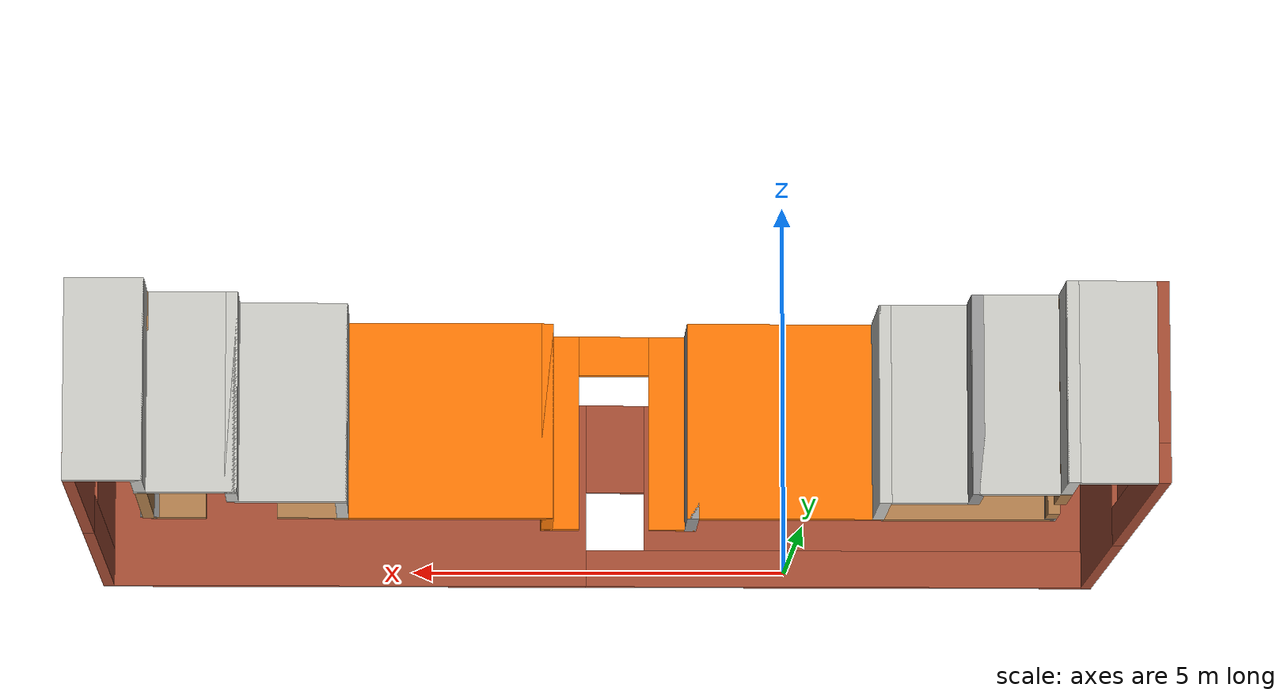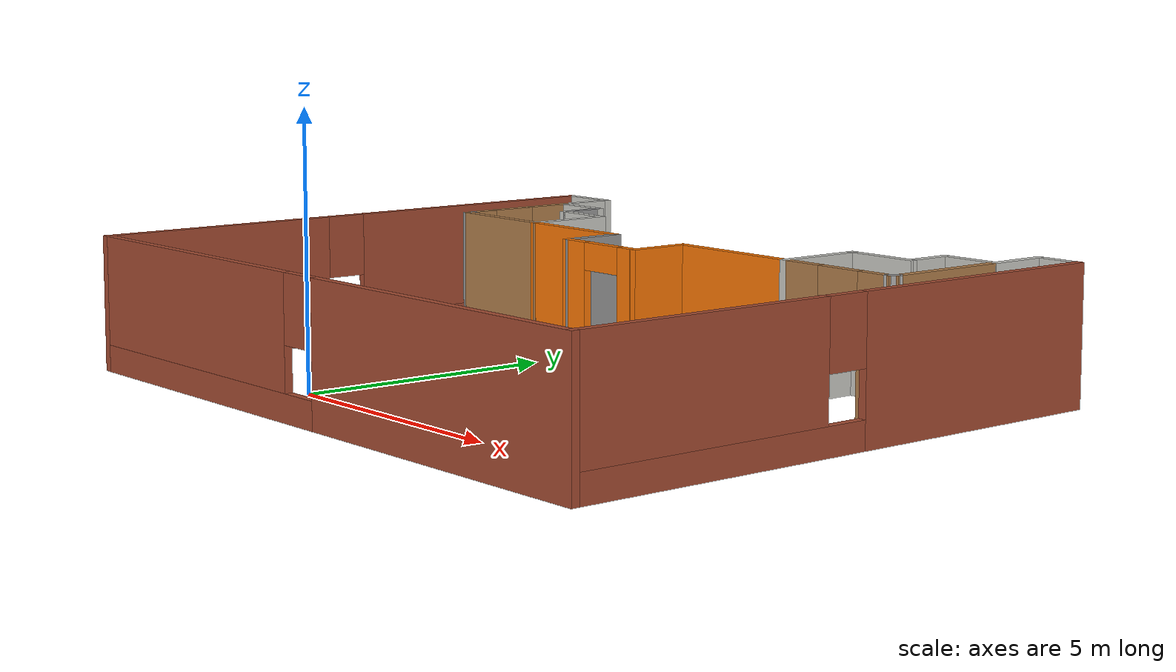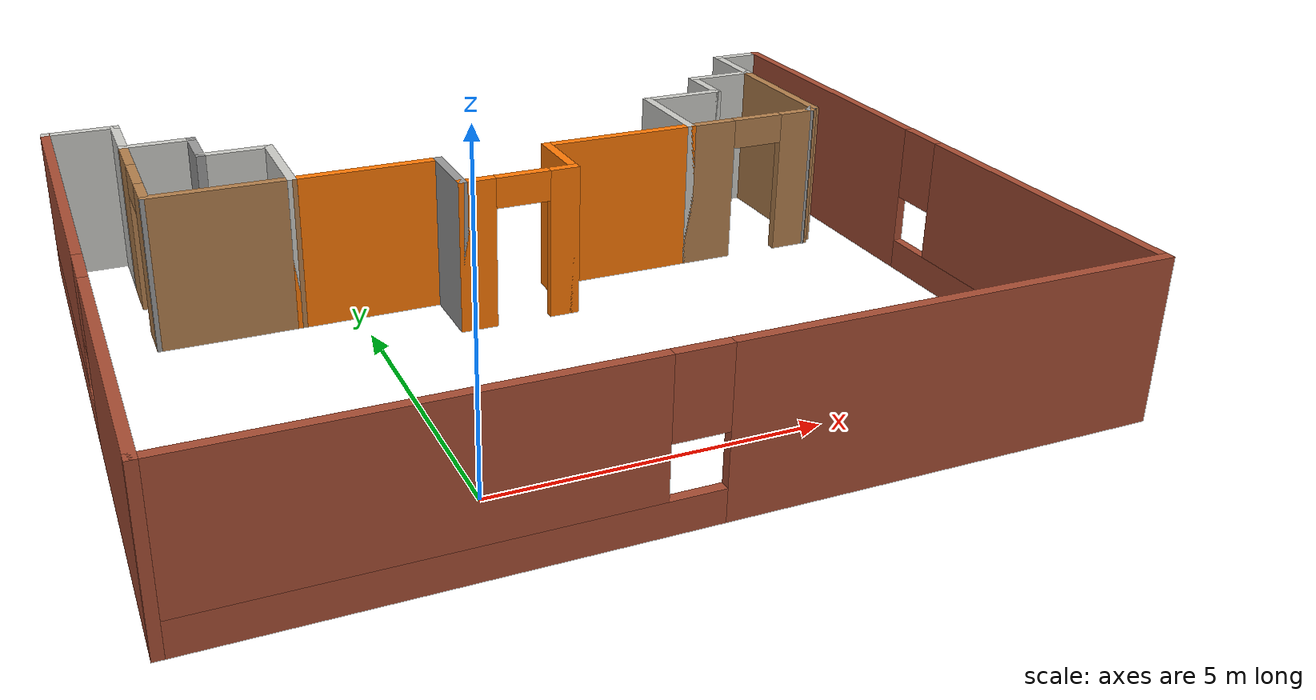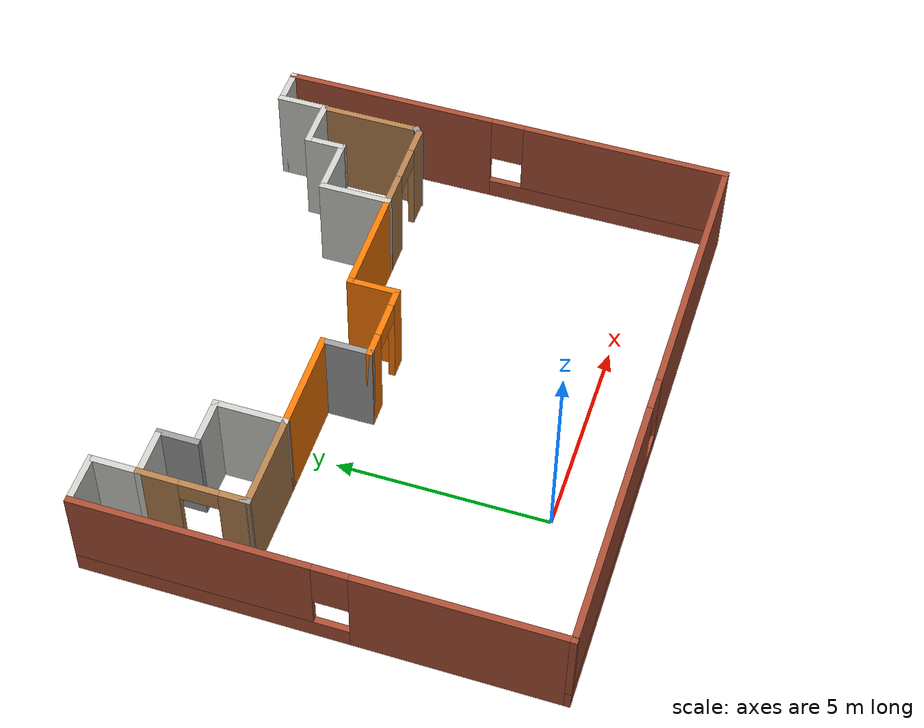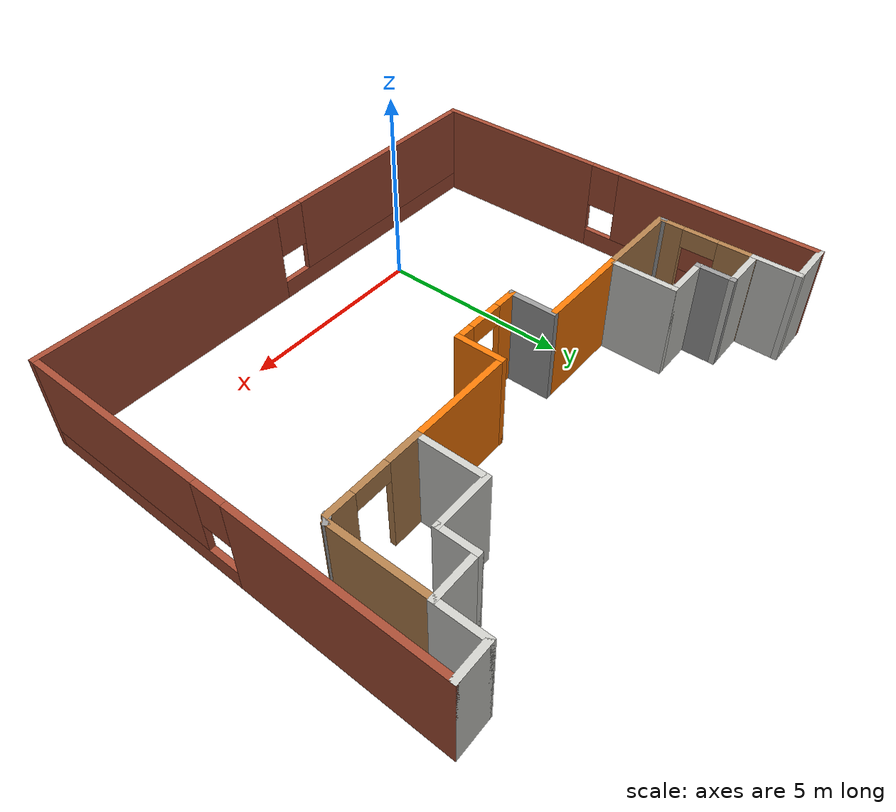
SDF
<?xml version='1.0'?>
<sdf version='1.6'>
  <model name='Building'>
    <pose frame=''>2.47 3.875 0 0 -0 0</pose>
    <link name='Wall_0'>
      <pose frame=''>-6.7 0 0 0 -0 1.5708</pose>
      <visual name='Wall_0_Visual_0'>
        <pose frame=''>-3.10618 0 1.25 0 -0 0</pose>
        <geometry>
          <box>
            <size>4.78763 0.15 2.5</size>
          </box>
        </geometry>
        <material>
          <script>
            <uri>file://media/materials/scripts/gazebo.material</uri>
            <name>Gazebo/Bricks</name>
          </script>
          <ambient>1 1 1 1</ambient>
        </material>
      </visual>
      <collision name='Wall_0_Collision_0'>
        <geometry>
          <box>
            <size>4.78763 0.15 2.5</size>
          </box>
        </geometry>
        <pose frame=''>-3.10618 0 1.25 0 -0 0</pose>
      </collision>
      <visual name='Wall_0_Visual_1'>
        <pose frame=''>2.39382 0 0.25 0 -0 0</pose>
        <geometry>
          <box>
            <size>6.21237 0.15 0.5</size>
          </box>
        </geometry>
        <material>
          <script>
            <uri>file://media/materials/scripts/gazebo.material</uri>
            <name>Gazebo/Bricks</name>
          </script>
          <ambient>1 1 1 1</ambient>
        </material>
      </visual>
      <collision name='Wall_0_Collision_1'>
        <geometry>
          <box>
            <size>6.21237 0.15 0.5</size>
          </box>
        </geometry>
        <pose frame=''>2.39382 0 0.25 0 -0 0</pose>
      </collision>
      <visual name='Wall_0_Visual_2'>
        <pose frame=''>2.79382 0 1.5 0 -0 0</pose>
        <geometry>
          <box>
            <size>5.41237 0.15 2</size>
          </box>
        </geometry>
        <material>
          <script>
            <uri>file://media/materials/scripts/gazebo.material</uri>
            <name>Gazebo/Bricks</name>
          </script>
          <ambient>1 1 1 1</ambient>
        </material>
      </visual>
      <collision name='Wall_0_Collision_2'>
        <geometry>
          <box>
            <size>5.41237 0.15 2</size>
          </box>
        </geometry>
        <pose frame=''>2.79382 0 1.5 0 -0 0</pose>
      </collision>
      <visual name='Wall_0_Visual_3'>
        <pose frame=''>-0.312368 0 1.9 0 -0 0</pose>
        <geometry>
          <box>
            <size>0.8 0.15 1.2</size>
          </box>
        </geometry>
        <material>
          <script>
            <uri>file://media/materials/scripts/gazebo.material</uri>
            <name>Gazebo/Bricks</name>
          </script>
          <ambient>1 1 1 1</ambient>
        </material>
      </visual>
      <collision name='Wall_0_Collision_3'>
        <geometry>
          <box>
            <size>0.8 0.15 1.2</size>
          </box>
        </geometry>
        <pose frame=''>-0.312368 0 1.9 0 -0 0</pose>
      </collision>
    </link>
    <link name='Wall_1'>
      <collision name='Wall_1_Collision'>
        <geometry>
          <box>
            <size>1.26323 0.15 2.5</size>
          </box>
        </geometry>
        <pose frame=''>0 0 1.25 0 -0 0</pose>
      </collision>
      <visual name='Wall_1_Visual'>
        <pose frame=''>0 0 1.25 0 -0 0</pose>
        <geometry>
          <box>
            <size>1.26323 0.15 2.5</size>
          </box>
        </geometry>
        <material>
          <script>
            <uri>file://media/materials/scripts/gazebo.material</uri>
            <name>Gazebo/CeilingTiled</name>
          </script>
          <ambient>1 1 1 1</ambient>
        </material>
      </visual>
      <pose frame=''>-6.14339 5.425 0 0 -0 0</pose>
    </link>
    <link name='Wall_10'>
      <collision name='Wall_10_Collision'>
        <geometry>
          <box>
            <size>1.25 0.15 2.5</size>
          </box>
        </geometry>
        <pose frame=''>0 0 1.25 0 -0 0</pose>
      </collision>
      <visual name='Wall_10_Visual'>
        <pose frame=''>0 0 1.25 0 -0 0</pose>
        <geometry>
          <box>
            <size>1.25 0.15 2.5</size>
          </box>
        </geometry>
        <material>
          <script>
            <uri>file://media/materials/scripts/gazebo.material</uri>
            <name>Gazebo/Grey</name>
          </script>
          <ambient>0.996078 0.47451 0.0196078 1</ambient>
        </material>
      </visual>
      <pose frame=''>0.8 1.325 0 0 -0 1.5708</pose>
    </link>
    <link name='Wall_11'>
      <collision name='Wall_11_Collision'>
        <geometry>
          <box>
            <size>2.75 0.15 2.5</size>
          </box>
        </geometry>
        <pose frame=''>0 0 1.25 0 -0 0</pose>
      </collision>
      <visual name='Wall_11_Visual'>
        <pose frame=''>0 0 1.25 0 -0 0</pose>
        <geometry>
          <box>
            <size>2.75 0.15 2.5</size>
          </box>
        </geometry>
        <material>
          <script>
            <uri>file://media/materials/scripts/gazebo.material</uri>
            <name>Gazebo/Grey</name>
          </script>
          <ambient>0.996078 0.47451 0.0196078 1</ambient>
        </material>
      </visual>
      <pose frame=''>2.1 1.875 0 0 -0 0</pose>
    </link>
    <link name='Wall_12'>
      <collision name='Wall_12_Collision'>
        <geometry>
          <box>
            <size>1.75 0.15 2.5</size>
          </box>
        </geometry>
        <pose frame=''>0 0 1.25 0 -0 0</pose>
      </collision>
      <visual name='Wall_12_Visual'>
        <pose frame=''>0 0 1.25 0 -0 0</pose>
        <geometry>
          <box>
            <size>1.75 0.15 2.5</size>
          </box>
        </geometry>
        <material>
          <script>
            <uri>file://media/materials/scripts/gazebo.material</uri>
            <name>Gazebo/CeilingTiled</name>
          </script>
          <ambient>1 0.764706 0.305882 1</ambient>
        </material>
      </visual>
      <pose frame=''>3.4 2.675 0 0 -0 1.5708</pose>
    </link>
    <link name='Wall_13'>
      <collision name='Wall_13_Collision'>
        <geometry>
          <box>
            <size>1.5 0.15 2.5</size>
          </box>
        </geometry>
        <pose frame=''>0 0 1.25 0 -0 0</pose>
      </collision>
      <visual name='Wall_13_Visual'>
        <pose frame=''>0 0 1.25 0 -0 0</pose>
        <geometry>
          <box>
            <size>1.5 0.15 2.5</size>
          </box>
        </geometry>
        <material>
          <script>
            <uri>file://media/materials/scripts/gazebo.material</uri>
            <name>Gazebo/CeilingTiled</name>
          </script>
          <ambient>1 1 1 1</ambient>
        </material>
      </visual>
      <pose frame=''>4.075 3.475 0 0 -0 0</pose>
    </link>
    <link name='Wall_14'>
      <collision name='Wall_14_Collision'>
        <geometry>
          <box>
            <size>1 0.15 2.5</size>
          </box>
        </geometry>
        <pose frame=''>0 0 1.25 0 -0 0</pose>
      </collision>
      <visual name='Wall_14_Visual'>
        <pose frame=''>0 0 1.25 0 -0 0</pose>
        <geometry>
          <box>
            <size>1 0.15 2.5</size>
          </box>
        </geometry>
        <material>
          <script>
            <uri>file://media/materials/scripts/gazebo.material</uri>
            <name>Gazebo/CeilingTiled</name>
          </script>
          <ambient>1 1 1 1</ambient>
        </material>
      </visual>
      <pose frame=''>4.75 3.9 0 0 -0 1.5708</pose>
    </link>
    <link name='Wall_15'>
      <collision name='Wall_15_Collision'>
        <geometry>
          <box>
            <size>1.273 0.15 2.5</size>
          </box>
        </geometry>
        <pose frame=''>0 0 1.25 0 -0 0</pose>
      </collision>
      <visual name='Wall_15_Visual'>
        <pose frame=''>0 0 1.25 0 -0 0</pose>
        <geometry>
          <box>
            <size>1.273 0.15 2.5</size>
          </box>
        </geometry>
        <material>
          <script>
            <uri>file://media/materials/scripts/gazebo.material</uri>
            <name>Gazebo/CeilingTiled</name>
          </script>
          <ambient>1 1 1 1</ambient>
        </material>
      </visual>
      <pose frame=''>5.3115 4.325 0 0 -0 0</pose>
    </link>
    <link name='Wall_16'>
      <collision name='Wall_16_Collision'>
        <geometry>
          <box>
            <size>1.25 0.15 2.5</size>
          </box>
        </geometry>
        <pose frame=''>0 0 1.25 0 -0 0</pose>
      </collision>
      <visual name='Wall_16_Visual'>
        <pose frame=''>0 0 1.25 0 -0 0</pose>
        <geometry>
          <box>
            <size>1.25 0.15 2.5</size>
          </box>
        </geometry>
        <material>
          <script>
            <uri>file://media/materials/scripts/gazebo.material</uri>
            <name>Gazebo/CeilingTiled</name>
          </script>
          <ambient>1 1 1 1</ambient>
        </material>
      </visual>
      <pose frame=''>5.873 4.875 0 0 -0 1.5708</pose>
    </link>
    <link name='Wall_17'>
      <collision name='Wall_17_Collision'>
        <geometry>
          <box>
            <size>0.977 0.15 2.5</size>
          </box>
        </geometry>
        <pose frame=''>0 0 1.25 0 -0 0</pose>
      </collision>
      <visual name='Wall_17_Visual'>
        <pose frame=''>0 0 1.25 0 -0 0</pose>
        <geometry>
          <box>
            <size>0.977 0.15 2.5</size>
          </box>
        </geometry>
        <material>
          <script>
            <uri>file://media/materials/scripts/gazebo.material</uri>
            <name>Gazebo/CeilingTiled</name>
          </script>
          <ambient>1 1 1 1</ambient>
        </material>
      </visual>
      <pose frame=''>6.2865 5.425 0 0 -0 0</pose>
    </link>
    <link name='Wall_18'>
      <pose frame=''>6.7 0 0 0 0 -1.5708</pose>
      <visual name='Wall_18_Visual_0'>
        <pose frame=''>-2.90947 0 1.25 0 -0 0</pose>
        <geometry>
          <box>
            <size>5.18106 0.15 2.5</size>
          </box>
        </geometry>
        <material>
          <script>
            <uri>file://media/materials/scripts/gazebo.material</uri>
            <name>Gazebo/Bricks</name>
          </script>
          <ambient>1 1 1 1</ambient>
        </material>
      </visual>
      <collision name='Wall_18_Collision_0'>
        <geometry>
          <box>
            <size>5.18106 0.15 2.5</size>
          </box>
        </geometry>
        <pose frame=''>-2.90947 0 1.25 0 -0 0</pose>
      </collision>
      <visual name='Wall_18_Visual_1'>
        <pose frame=''>2.59053 0 0.25 0 -0 0</pose>
        <geometry>
          <box>
            <size>5.81894 0.15 0.5</size>
          </box>
        </geometry>
        <material>
          <script>
            <uri>file://media/materials/scripts/gazebo.material</uri>
            <name>Gazebo/Bricks</name>
          </script>
          <ambient>1 1 1 1</ambient>
        </material>
      </visual>
      <collision name='Wall_18_Collision_1'>
        <geometry>
          <box>
            <size>5.81894 0.15 0.5</size>
          </box>
        </geometry>
        <pose frame=''>2.59053 0 0.25 0 -0 0</pose>
      </collision>
      <visual name='Wall_18_Visual_2'>
        <pose frame=''>2.99053 0 1.5 0 -0 0</pose>
        <geometry>
          <box>
            <size>5.01894 0.15 2</size>
          </box>
        </geometry>
        <material>
          <script>
            <uri>file://media/materials/scripts/gazebo.material</uri>
            <name>Gazebo/Bricks</name>
          </script>
          <ambient>1 1 1 1</ambient>
        </material>
      </visual>
      <collision name='Wall_18_Collision_2'>
        <geometry>
          <box>
            <size>5.01894 0.15 2</size>
          </box>
        </geometry>
        <pose frame=''>2.99053 0 1.5 0 -0 0</pose>
      </collision>
      <visual name='Wall_18_Visual_3'>
        <pose frame=''>0.081062 0 1.9 0 -0 0</pose>
        <geometry>
          <box>
            <size>0.8 0.15 1.2</size>
          </box>
        </geometry>
        <material>
          <script>
            <uri>file://media/materials/scripts/gazebo.material</uri>
            <name>Gazebo/Bricks</name>
          </script>
          <ambient>1 1 1 1</ambient>
        </material>
      </visual>
      <collision name='Wall_18_Collision_3'>
        <geometry>
          <box>
            <size>0.8 0.15 1.2</size>
          </box>
        </geometry>
        <pose frame=''>0.081062 0 1.9 0 -0 0</pose>
      </collision>
    </link>
    <link name='Wall_19'>
      <pose frame=''>0 -5.425 0 0 -0 3.14159</pose>
      <visual name='Wall_19_Visual_0'>
        <pose frame=''>-3.47411 0 1.25 0 -0 0</pose>
        <geometry>
          <box>
            <size>6.60178 0.15 2.5</size>
          </box>
        </geometry>
        <material>
          <script>
            <uri>file://media/materials/scripts/gazebo.material</uri>
            <name>Gazebo/Bricks</name>
          </script>
          <ambient>1 1 1 1</ambient>
        </material>
      </visual>
      <collision name='Wall_19_Collision_0'>
        <geometry>
          <box>
            <size>6.60178 0.15 2.5</size>
          </box>
        </geometry>
        <pose frame=''>-3.47411 0 1.25 0 -0 0</pose>
      </collision>
      <visual name='Wall_19_Visual_1'>
        <pose frame=''>3.30089 0 0.25 0 -0 0</pose>
        <geometry>
          <box>
            <size>6.94822 0.15 0.5</size>
          </box>
        </geometry>
        <material>
          <script>
            <uri>file://media/materials/scripts/gazebo.material</uri>
            <name>Gazebo/Bricks</name>
          </script>
          <ambient>1 1 1 1</ambient>
        </material>
      </visual>
      <collision name='Wall_19_Collision_1'>
        <geometry>
          <box>
            <size>6.94822 0.15 0.5</size>
          </box>
        </geometry>
        <pose frame=''>3.30089 0 0.25 0 -0 0</pose>
      </collision>
      <visual name='Wall_19_Visual_2'>
        <pose frame=''>3.70089 0 1.5 0 -0 0</pose>
        <geometry>
          <box>
            <size>6.14822 0.15 2</size>
          </box>
        </geometry>
        <material>
          <script>
            <uri>file://media/materials/scripts/gazebo.material</uri>
            <name>Gazebo/Bricks</name>
          </script>
          <ambient>1 1 1 1</ambient>
        </material>
      </visual>
      <collision name='Wall_19_Collision_2'>
        <geometry>
          <box>
            <size>6.14822 0.15 2</size>
          </box>
        </geometry>
        <pose frame=''>3.70089 0 1.5 0 -0 0</pose>
      </collision>
      <visual name='Wall_19_Visual_3'>
        <pose frame=''>0.226781 0 1.9 0 -0 0</pose>
        <geometry>
          <box>
            <size>0.8 0.15 1.2</size>
          </box>
        </geometry>
        <material>
          <script>
            <uri>file://media/materials/scripts/gazebo.material</uri>
            <name>Gazebo/Bricks</name>
          </script>
          <ambient>1 1 1 1</ambient>
        </material>
      </visual>
      <collision name='Wall_19_Collision_3'>
        <geometry>
          <box>
            <size>0.8 0.15 1.2</size>
          </box>
        </geometry>
        <pose frame=''>0.226781 0 1.9 0 -0 0</pose>
      </collision>
    </link>
    <link name='Wall_2'>
      <collision name='Wall_2_Collision'>
        <geometry>
          <box>
            <size>1.25 0.15 2.5</size>
          </box>
        </geometry>
        <pose frame=''>0 0 1.25 0 -0 0</pose>
      </collision>
      <visual name='Wall_2_Visual'>
        <pose frame=''>0 0 1.25 0 -0 0</pose>
        <geometry>
          <box>
            <size>1.25 0.15 2.5</size>
          </box>
        </geometry>
        <material>
          <script>
            <uri>file://media/materials/scripts/gazebo.material</uri>
            <name>Gazebo/CeilingTiled</name>
          </script>
          <ambient>1 1 1 1</ambient>
        </material>
      </visual>
      <pose frame=''>-5.58678 4.875 0 0 0 -1.5708</pose>
    </link>
    <link name='Wall_25'>
      <pose frame=''>-5.58678 3.16323 0 0 0 -1.5708</pose>
      <visual name='Wall_25_Visual_0'>
        <pose frame=''>-0.75673 0 1.25 0 -0 0</pose>
        <geometry>
          <box>
            <size>0.986541 0.15 2.5</size>
          </box>
        </geometry>
        <material>
          <script>
            <uri>file://media/materials/scripts/gazebo.material</uri>
            <name>Gazebo/Wood</name>
          </script>
          <ambient>1 1 1 1</ambient>
        </material>
      </visual>
      <collision name='Wall_25_Collision_0'>
        <geometry>
          <box>
            <size>0.986541 0.15 2.5</size>
          </box>
        </geometry>
        <pose frame=''>-0.75673 0 1.25 0 -0 0</pose>
      </collision>
      <visual name='Wall_25_Visual_1'>
        <pose frame=''>0.94327 0 1.25 0 -0 0</pose>
        <geometry>
          <box>
            <size>0.613459 0.15 2.5</size>
          </box>
        </geometry>
        <material>
          <script>
            <uri>file://media/materials/scripts/gazebo.material</uri>
            <name>Gazebo/Wood</name>
          </script>
          <ambient>1 1 1 1</ambient>
        </material>
      </visual>
      <collision name='Wall_25_Collision_1'>
        <geometry>
          <box>
            <size>0.613459 0.15 2.5</size>
          </box>
        </geometry>
        <pose frame=''>0.94327 0 1.25 0 -0 0</pose>
      </collision>
      <visual name='Wall_25_Visual_2'>
        <pose frame=''>0.186541 0 2.25 0 -0 0</pose>
        <geometry>
          <box>
            <size>0.9 0.15 0.5</size>
          </box>
        </geometry>
        <material>
          <script>
            <uri>file://media/materials/scripts/gazebo.material</uri>
            <name>Gazebo/Wood</name>
          </script>
          <ambient>1 1 1 1</ambient>
        </material>
      </visual>
      <collision name='Wall_25_Collision_2'>
        <geometry>
          <box>
            <size>0.9 0.15 0.5</size>
          </box>
        </geometry>
        <pose frame=''>0.186541 0 2.25 0 -0 0</pose>
      </collision>
    </link>
    <link name='Wall_27'>
      <collision name='Wall_27_Collision'>
        <geometry>
          <box>
            <size>0.25 0.15 2.5</size>
          </box>
        </geometry>
        <pose frame=''>0 0 1.25 0 -0 0</pose>
      </collision>
      <visual name='Wall_27_Visual'>
        <pose frame=''>0 0 1.25 0 -0 0</pose>
        <geometry>
          <box>
            <size>0.25 0.15 2.5</size>
          </box>
        </geometry>
        <material>
          <script>
            <uri>file://media/materials/scripts/gazebo.material</uri>
            <name>Gazebo/Grey</name>
          </script>
          <ambient>1 1 1 1</ambient>
        </material>
      </visual>
      <pose frame=''>-5.58678 1.93823 0 0 0 -1.5708</pose>
    </link>
    <link name='Wall_28'>
      <collision name='Wall_28_Collision'>
        <geometry>
          <box>
            <size>2.33682 0.15 2.5</size>
          </box>
        </geometry>
        <pose frame=''>0 0 1.25 0 -0 0</pose>
      </collision>
      <visual name='Wall_28_Visual'>
        <pose frame=''>0 0 1.25 0 -0 0</pose>
        <geometry>
          <box>
            <size>2.33682 0.15 2.5</size>
          </box>
        </geometry>
        <material>
          <script>
            <uri>file://media/materials/scripts/gazebo.material</uri>
            <name>Gazebo/Wood</name>
          </script>
          <ambient>1 1 1 1</ambient>
        </material>
      </visual>
      <pose frame=''>-4.49339 1.88161 0 0 0 -0.006048</pose>
    </link>
    <link name='Wall_3'>
      <collision name='Wall_3_Collision'>
        <geometry>
          <box>
            <size>1.2371 0.15 2.5</size>
          </box>
        </geometry>
        <pose frame=''>0 0 1.25 0 -0 0</pose>
      </collision>
      <visual name='Wall_3_Visual'>
        <pose frame=''>0 0 1.25 0 -0 0</pose>
        <geometry>
          <box>
            <size>1.2371 0.15 2.5</size>
          </box>
        </geometry>
        <material>
          <script>
            <uri>file://media/materials/scripts/gazebo.material</uri>
            <name>Gazebo/CeilingTiled</name>
          </script>
          <ambient>1 1 1 1</ambient>
        </material>
      </visual>
      <pose frame=''>-5.04339 4.325 0 0 -0 0</pose>
    </link>
    <link name='Wall_31'>
      <collision name='Wall_31_Collision'>
        <geometry>
          <box>
            <size>2.5 0.15 2.5</size>
          </box>
        </geometry>
        <pose frame=''>0 0 1.25 0 -0 0</pose>
      </collision>
      <visual name='Wall_31_Visual'>
        <pose frame=''>0 0 1.25 0 -0 0</pose>
        <geometry>
          <box>
            <size>2.5 0.15 2.5</size>
          </box>
        </geometry>
        <material>
          <script>
            <uri>file://media/materials/scripts/gazebo.material</uri>
            <name>Gazebo/Wood</name>
          </script>
          <ambient>1 1 1 1</ambient>
        </material>
      </visual>
      <pose frame=''>5.8615 3.15 0 0 -0 1.5708</pose>
    </link>
    <link name='Wall_33'>
      <pose frame=''>4.575 1.875 0 0 -0 0</pose>
      <visual name='Wall_33_Visual_0'>
        <pose frame=''>-0.797379 0 1.25 0 -0 0</pose>
        <geometry>
          <box>
            <size>0.905241 0.15 2.5</size>
          </box>
        </geometry>
        <material>
          <script>
            <uri>file://media/materials/scripts/gazebo.material</uri>
            <name>Gazebo/Wood</name>
          </script>
          <ambient>1 1 1 1</ambient>
        </material>
      </visual>
      <collision name='Wall_33_Collision_0'>
        <geometry>
          <box>
            <size>0.905241 0.15 2.5</size>
          </box>
        </geometry>
        <pose frame=''>-0.797379 0 1.25 0 -0 0</pose>
      </collision>
      <visual name='Wall_33_Visual_1'>
        <pose frame=''>0.902621 0 1.25 0 -0 0</pose>
        <geometry>
          <box>
            <size>0.694759 0.15 2.5</size>
          </box>
        </geometry>
        <material>
          <script>
            <uri>file://media/materials/scripts/gazebo.material</uri>
            <name>Gazebo/Wood</name>
          </script>
          <ambient>1 1 1 1</ambient>
        </material>
      </visual>
      <collision name='Wall_33_Collision_1'>
        <geometry>
          <box>
            <size>0.694759 0.15 2.5</size>
          </box>
        </geometry>
        <pose frame=''>0.902621 0 1.25 0 -0 0</pose>
      </collision>
      <visual name='Wall_33_Visual_2'>
        <pose frame=''>0.105241 0 2.25 0 -0 0</pose>
        <geometry>
          <box>
            <size>0.9 0.15 0.5</size>
          </box>
        </geometry>
        <material>
          <script>
            <uri>file://media/materials/scripts/gazebo.material</uri>
            <name>Gazebo/Wood</name>
          </script>
          <ambient>1 1 1 1</ambient>
        </material>
      </visual>
      <collision name='Wall_33_Collision_2'>
        <geometry>
          <box>
            <size>0.9 0.15 0.5</size>
          </box>
        </geometry>
        <pose frame=''>0.105241 0 2.25 0 -0 0</pose>
      </collision>
    </link>
    <link name='Wall_36'>
      <collision name='Wall_36_Collision'>
        <geometry>
          <box>
            <size>0.299774 0.15 2.5</size>
          </box>
        </geometry>
        <pose frame=''>0 0 1.25 0 -0 0</pose>
      </collision>
      <visual name='Wall_36_Visual'>
        <pose frame=''>0 0 1.25 0 -0 0</pose>
        <geometry>
          <box>
            <size>0.299774 0.15 2.5</size>
          </box>
        </geometry>
        <material>
          <script>
            <uri>file://media/materials/scripts/gazebo.material</uri>
            <name>Gazebo/Grey</name>
          </script>
          <ambient>1 1 1 1</ambient>
        </material>
      </visual>
      <pose frame=''>5.80575 1.925 0 0 0 -2.41052</pose>
    </link>
    <link name='Wall_4'>
      <collision name='Wall_4_Collision'>
        <geometry>
          <box>
            <size>1 0.15 2.5</size>
          </box>
        </geometry>
        <pose frame=''>0 0 1.25 0 -0 0</pose>
      </collision>
      <visual name='Wall_4_Visual'>
        <pose frame=''>0 0 1.25 0 -0 0</pose>
        <geometry>
          <box>
            <size>1 0.15 2.5</size>
          </box>
        </geometry>
        <material>
          <script>
            <uri>file://media/materials/scripts/gazebo.material</uri>
            <name>Gazebo/Grey</name>
          </script>
          <ambient>1 1 1 1</ambient>
        </material>
      </visual>
      <pose frame=''>-4.5 3.9 0 0 0 -1.5708</pose>
    </link>
    <link name='Wall_5'>
      <collision name='Wall_5_Collision'>
        <geometry>
          <box>
            <size>1.23677 0.15 2.5</size>
          </box>
        </geometry>
        <pose frame=''>0 0 1.25 0 -0 0</pose>
      </collision>
      <visual name='Wall_5_Visual'>
        <pose frame=''>0 0 1.25 0 -0 0</pose>
        <geometry>
          <box>
            <size>1.23677 0.15 2.5</size>
          </box>
        </geometry>
        <material>
          <script>
            <uri>file://media/materials/scripts/gazebo.material</uri>
            <name>Gazebo/CeilingTiled</name>
          </script>
          <ambient>1 1 1 1</ambient>
        </material>
      </visual>
      <pose frame=''>-3.95661 3.475 0 0 -0 0</pose>
    </link>
    <link name='Wall_6'>
      <collision name='Wall_6_Collision'>
        <geometry>
          <box>
            <size>1.75 0.15 2.5</size>
          </box>
        </geometry>
        <pose frame=''>0 0 1.25 0 -0 0</pose>
      </collision>
      <visual name='Wall_6_Visual'>
        <pose frame=''>0 0 1.25 0 -0 0</pose>
        <geometry>
          <box>
            <size>1.75 0.15 2.5</size>
          </box>
        </geometry>
        <material>
          <script>
            <uri>file://media/materials/scripts/gazebo.material</uri>
            <name>Gazebo/CeilingTiled</name>
          </script>
          <ambient>1 0.764706 0.305882 1</ambient>
        </material>
      </visual>
      <pose frame=''>-3.4 2.675 0 0 0 -1.5708</pose>
    </link>
    <link name='Wall_7'>
      <collision name='Wall_7_Collision'>
        <geometry>
          <box>
            <size>2.5 0.15 2.5</size>
          </box>
        </geometry>
        <pose frame=''>0 0 1.25 0 -0 0</pose>
      </collision>
      <visual name='Wall_7_Visual'>
        <pose frame=''>0 0 1.25 0 -0 0</pose>
        <geometry>
          <box>
            <size>2.5 0.15 2.5</size>
          </box>
        </geometry>
        <material>
          <script>
            <uri>file://media/materials/scripts/gazebo.material</uri>
            <name>Gazebo/Grey</name>
          </script>
          <ambient>0.996078 0.47451 0.0196078 1</ambient>
        </material>
      </visual>
      <pose frame=''>-2.225 1.875 0 0 -0 0</pose>
    </link>
    <link name='Wall_8'>
      <collision name='Wall_8_Collision'>
        <geometry>
          <box>
            <size>1.25 0.15 2.5</size>
          </box>
        </geometry>
        <pose frame=''>0 0 1.25 0 -0 0</pose>
      </collision>
      <visual name='Wall_8_Visual'>
        <pose frame=''>0 0 1.25 0 -0 0</pose>
        <geometry>
          <box>
            <size>1.25 0.15 2.5</size>
          </box>
        </geometry>
        <material>
          <script>
            <uri>file://media/materials/scripts/gazebo.material</uri>
            <name>Gazebo/Grey</name>
          </script>
          <ambient>1 1 1 1</ambient>
        </material>
      </visual>
      <pose frame=''>-1.05 1.325 0 0 0 -1.5708</pose>
    </link>
    <link name='Wall_9'>
      <pose frame=''>-0.125 0.775 0 0 -0 0</pose>
      <visual name='Wall_9_Visual_0'>
        <pose frame=''>-0.694934 0 1.25 0 -0 0</pose>
        <geometry>
          <box>
            <size>0.610133 0.15 2.5</size>
          </box>
        </geometry>
        <material>
          <script>
            <uri>file://media/materials/scripts/gazebo.material</uri>
            <name>Gazebo/Grey</name>
          </script>
          <ambient>0.996078 0.47451 0.0196078 1</ambient>
        </material>
      </visual>
      <collision name='Wall_9_Collision_0'>
        <geometry>
          <box>
            <size>0.610133 0.15 2.5</size>
          </box>
        </geometry>
        <pose frame=''>-0.694934 0 1.25 0 -0 0</pose>
      </collision>
      <visual name='Wall_9_Visual_1'>
        <pose frame=''>0.755066 0 1.25 0 -0 0</pose>
        <geometry>
          <box>
            <size>0.489867 0.15 2.5</size>
          </box>
        </geometry>
        <material>
          <script>
            <uri>file://media/materials/scripts/gazebo.material</uri>
            <name>Gazebo/Grey</name>
          </script>
          <ambient>0.996078 0.47451 0.0196078 1</ambient>
        </material>
      </visual>
      <collision name='Wall_9_Collision_1'>
        <geometry>
          <box>
            <size>0.489867 0.15 2.5</size>
          </box>
        </geometry>
        <pose frame=''>0.755066 0 1.25 0 -0 0</pose>
      </collision>
      <visual name='Wall_9_Visual_2'>
        <pose frame=''>0.060133 0 2.25 0 -0 0</pose>
        <geometry>
          <box>
            <size>0.9 0.15 0.5</size>
          </box>
        </geometry>
        <material>
          <script>
            <uri>file://media/materials/scripts/gazebo.material</uri>
            <name>Gazebo/Grey</name>
          </script>
          <ambient>0.996078 0.47451 0.0196078 1</ambient>
        </material>
      </visual>
      <collision name='Wall_9_Collision_2'>
        <geometry>
          <box>
            <size>0.9 0.15 0.5</size>
          </box>
        </geometry>
        <pose frame=''>0.060133 0 2.25 0 -0 0</pose>
      </collision>
    </link>
    <static>1</static>
  </model>
</sdf>
